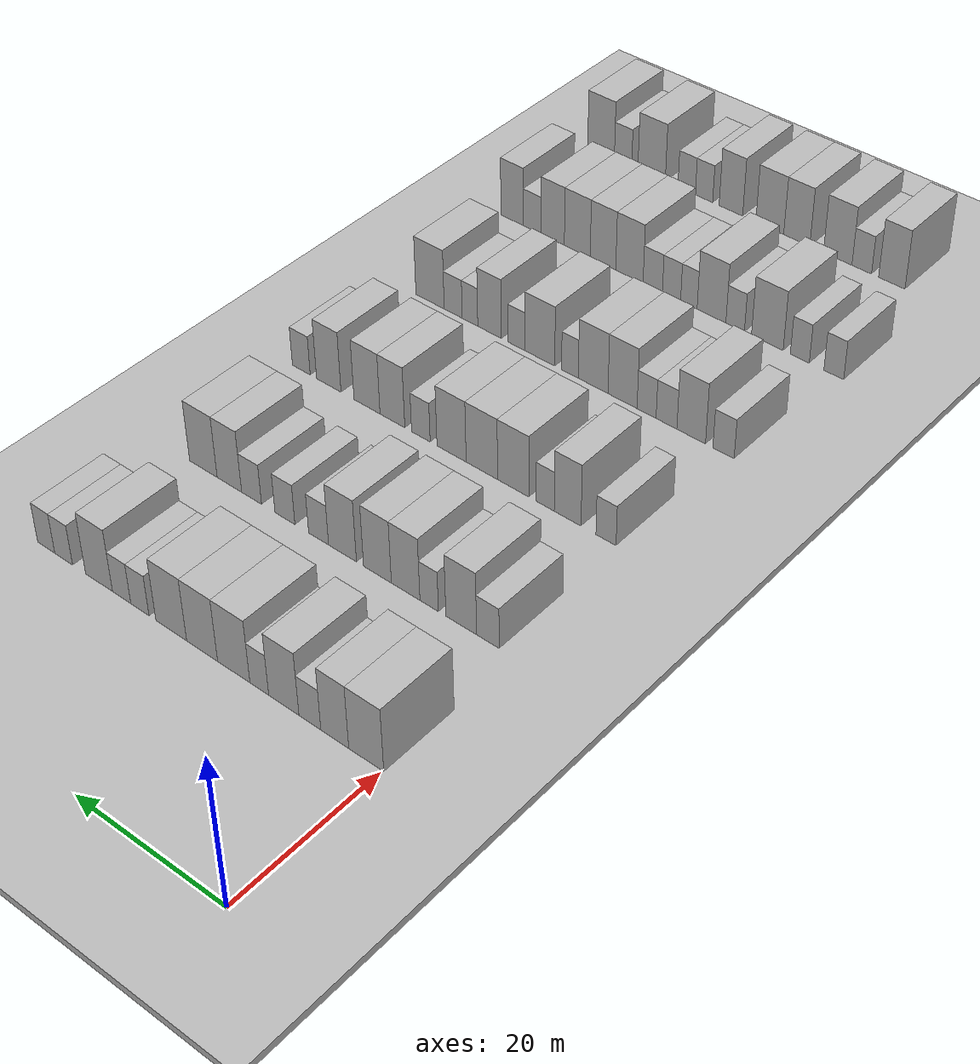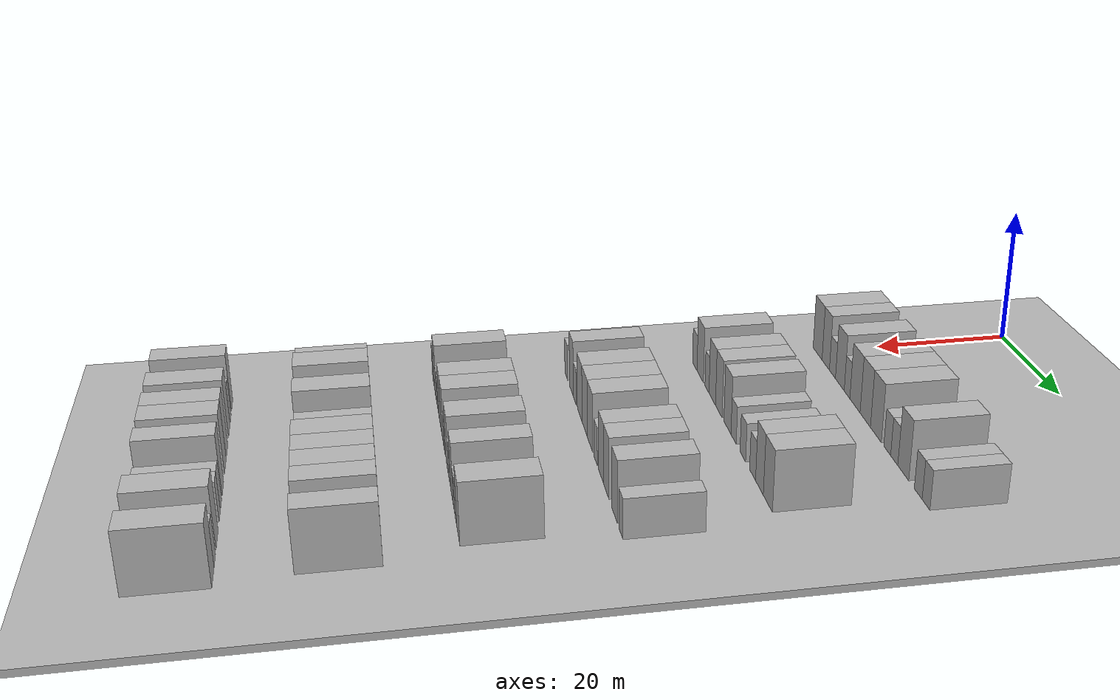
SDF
<sdf version="1.6">
 <world name="default">
  <include><name>ground_plane_1</name><uri>model://HANNAS_ground_plane</uri></include>
  <include>
   <name>ground_plane_2</name>
   <uri>model://HANNAS_ground_plane</uri>
   <pose>100 0 0  0 0 0</pose>
  </include>
  <model name="building_94">
   <static>1</static>
   <pose>25.0000 1.7902 0 0.000000 0.000000 0.000000</pose>
   <link name="link">
    <pose>0 0 4.50 0 0 0</pose>
    <collision name="collision"><geometry><box><size>10.0000 4.4809 9.0000</size></box></geometry></collision>
    <visual name="visual">
     <cast_shadows>0</cast_shadows>
     <geometry><box><size>10.0000 4.4809 9.0000</size></box></geometry>
     <material>
      <script>
       <uri>model://HANNAS_wall/materials/scripts</uri>
       <uri>model://HANNAS_wall/materials/textures</uri>
       <name>vrc/HANNAS_wall</name>
      </script>
     </material>
    </visual>
   </link>
  </model>
  <model name="building_95">
   <static>1</static>
   <pose>25.0000 5.8483 0 0.000000 0.000000 0.000000</pose>
   <link name="link">
    <pose>0 0 4.50 0 0 0</pose>
    <collision name="collision"><geometry><box><size>10.0000 3.6353 9.0000</size></box></geometry></collision>
    <visual name="visual">
     <cast_shadows>0</cast_shadows>
     <geometry><box><size>10.0000 3.6353 9.0000</size></box></geometry>
     <material>
      <script>
       <uri>model://HANNAS_wall/materials/scripts</uri>
       <uri>model://HANNAS_wall/materials/textures</uri>
       <name>vrc/HANNAS_wall</name>
      </script>
     </material>
    </visual>
   </link>
  </model>
  <model name="building_96">
   <static>1</static>
   <pose>25.0000 9.1132 0 0.000000 0.000000 0.000000</pose>
   <link name="link">
    <pose>0 0 3.00 0 0 0</pose>
    <collision name="collision"><geometry><box><size>10.0000 2.8946 6.0000</size></box></geometry></collision>
    <visual name="visual">
     <cast_shadows>0</cast_shadows>
     <geometry><box><size>10.0000 2.8946 6.0000</size></box></geometry>
     <material>
      <script>
       <uri>model://HANNAS_wall/materials/scripts</uri>
       <uri>model://HANNAS_wall/materials/textures</uri>
       <name>vrc/HANNAS_wall</name>
      </script>
     </material>
    </visual>
   </link>
  </model>
  <model name="building_97">
   <static>1</static>
   <pose>25.0000 12.5950 0 0.000000 0.000000 0.000000</pose>
   <link name="link">
    <pose>0 0 4.50 0 0 0</pose>
    <collision name="collision"><geometry><box><size>10.0000 4.0690 9.0000</size></box></geometry></collision>
    <visual name="visual">
     <cast_shadows>0</cast_shadows>
     <geometry><box><size>10.0000 4.0690 9.0000</size></box></geometry>
     <material>
      <script>
       <uri>model://HANNAS_wall/materials/scripts</uri>
       <uri>model://HANNAS_wall/materials/textures</uri>
       <name>vrc/HANNAS_wall</name>
      </script>
     </material>
    </visual>
   </link>
  </model>
  <model name="building_98">
   <static>1</static>
   <pose>25.0000 15.9130 0 0.000000 0.000000 0.000000</pose>
   <link name="link">
    <pose>0 0 3.00 0 0 0</pose>
    <collision name="collision"><geometry><box><size>10.0000 2.5670 6.0000</size></box></geometry></collision>
    <visual name="visual">
     <cast_shadows>0</cast_shadows>
     <geometry><box><size>10.0000 2.5670 6.0000</size></box></geometry>
     <material>
      <script>
       <uri>model://HANNAS_wall/materials/scripts</uri>
       <uri>model://HANNAS_wall/materials/textures</uri>
       <name>vrc/HANNAS_wall</name>
      </script>
     </material>
    </visual>
   </link>
  </model>
  <model name="building_99">
   <static>1</static>
   <pose>25.0000 19.4385 0 0.000000 0.000000 0.000000</pose>
   <link name="link">
    <pose>0 0 4.50 0 0 0</pose>
    <collision name="collision"><geometry><box><size>10.0000 4.4841 9.0000</size></box></geometry></collision>
    <visual name="visual">
     <cast_shadows>0</cast_shadows>
     <geometry><box><size>10.0000 4.4841 9.0000</size></box></geometry>
     <material>
      <script>
       <uri>model://HANNAS_wall/materials/scripts</uri>
       <uri>model://HANNAS_wall/materials/textures</uri>
       <name>vrc/HANNAS_wall</name>
      </script>
     </material>
    </visual>
   </link>
  </model>
  <model name="building_100">
   <static>1</static>
   <pose>25.0000 23.8753 0 0.000000 0.000000 0.000000</pose>
   <link name="link">
    <pose>0 0 4.50 0 0 0</pose>
    <collision name="collision"><geometry><box><size>10.0000 4.3895 9.0000</size></box></geometry></collision>
    <visual name="visual">
     <cast_shadows>0</cast_shadows>
     <geometry><box><size>10.0000 4.3895 9.0000</size></box></geometry>
     <material>
      <script>
       <uri>model://HANNAS_wall/materials/scripts</uri>
       <uri>model://HANNAS_wall/materials/textures</uri>
       <name>vrc/HANNAS_wall</name>
      </script>
     </material>
    </visual>
   </link>
  </model>
  <model name="building_101">
   <static>1</static>
   <pose>25.0000 28.2865 0 0.000000 0.000000 0.000000</pose>
   <link name="link">
    <pose>0 0 4.50 0 0 0</pose>
    <collision name="collision"><geometry><box><size>10.0000 4.4328 9.0000</size></box></geometry></collision>
    <visual name="visual">
     <cast_shadows>0</cast_shadows>
     <geometry><box><size>10.0000 4.4328 9.0000</size></box></geometry>
     <material>
      <script>
       <uri>model://HANNAS_wall/materials/scripts</uri>
       <uri>model://HANNAS_wall/materials/textures</uri>
       <name>vrc/HANNAS_wall</name>
      </script>
     </material>
    </visual>
   </link>
  </model>
  <model name="building_102">
   <static>1</static>
   <pose>25.0000 32.8436 0 0.000000 0.000000 0.000000</pose>
   <link name="link">
    <pose>0 0 3.00 0 0 0</pose>
    <collision name="collision"><geometry><box><size>10.0000 2.6814 6.0000</size></box></geometry></collision>
    <visual name="visual">
     <cast_shadows>0</cast_shadows>
     <geometry><box><size>10.0000 2.6814 6.0000</size></box></geometry>
     <material>
      <script>
       <uri>model://HANNAS_wall/materials/scripts</uri>
       <uri>model://HANNAS_wall/materials/textures</uri>
       <name>vrc/HANNAS_wall</name>
      </script>
     </material>
    </visual>
   </link>
  </model>
  <model name="building_103">
   <static>1</static>
   <pose>25.0000 35.5441 0 0.000000 0.000000 0.000000</pose>
   <link name="link">
    <pose>0 0 3.00 0 0 0</pose>
    <collision name="collision"><geometry><box><size>10.0000 2.7196 6.0000</size></box></geometry></collision>
    <visual name="visual">
     <cast_shadows>0</cast_shadows>
     <geometry><box><size>10.0000 2.7196 6.0000</size></box></geometry>
     <material>
      <script>
       <uri>model://HANNAS_wall/materials/scripts</uri>
       <uri>model://HANNAS_wall/materials/textures</uri>
       <name>vrc/HANNAS_wall</name>
      </script>
     </material>
    </visual>
   </link>
  </model>
  <model name="building_104">
   <static>1</static>
   <pose>25.0000 38.9410 0 0.000000 0.000000 0.000000</pose>
   <link name="link">
    <pose>0 0 4.50 0 0 0</pose>
    <collision name="collision"><geometry><box><size>10.0000 4.0742 9.0000</size></box></geometry></collision>
    <visual name="visual">
     <cast_shadows>0</cast_shadows>
     <geometry><box><size>10.0000 4.0742 9.0000</size></box></geometry>
     <material>
      <script>
       <uri>model://HANNAS_wall/materials/scripts</uri>
       <uri>model://HANNAS_wall/materials/textures</uri>
       <name>vrc/HANNAS_wall</name>
      </script>
     </material>
    </visual>
   </link>
  </model>
  <model name="building_105">
   <static>1</static>
   <pose>25.0000 44.3546 0 0.000000 0.000000 0.000000</pose>
   <link name="link">
    <pose>0 0 3.00 0 0 0</pose>
    <collision name="collision"><geometry><box><size>10.0000 2.7528 6.0000</size></box></geometry></collision>
    <visual name="visual">
     <cast_shadows>0</cast_shadows>
     <geometry><box><size>10.0000 2.7528 6.0000</size></box></geometry>
     <material>
      <script>
       <uri>model://HANNAS_wall/materials/scripts</uri>
       <uri>model://HANNAS_wall/materials/textures</uri>
       <name>vrc/HANNAS_wall</name>
      </script>
     </material>
    </visual>
   </link>
  </model>
  <model name="building_106">
   <static>1</static>
   <pose>25.0000 47.0709 0 0.000000 0.000000 0.000000</pose>
   <link name="link">
    <pose>0 0 3.00 0 0 0</pose>
    <collision name="collision"><geometry><box><size>10.0000 2.6799 6.0000</size></box></geometry></collision>
    <visual name="visual">
     <cast_shadows>0</cast_shadows>
     <geometry><box><size>10.0000 2.6799 6.0000</size></box></geometry>
     <material>
      <script>
       <uri>model://HANNAS_wall/materials/scripts</uri>
       <uri>model://HANNAS_wall/materials/textures</uri>
       <name>vrc/HANNAS_wall</name>
      </script>
     </material>
    </visual>
   </link>
  </model>
  <model name="building_255">
   <static>1</static>
   <pose>44.0000 2.9612 0 0.000000 0.000000 0.000000</pose>
   <link name="link">
    <pose>0 0 3.00 0 0 0</pose>
    <collision name="collision"><geometry><box><size>10.0000 2.9539 6.0000</size></box></geometry></collision>
    <visual name="visual">
     <cast_shadows>0</cast_shadows>
     <geometry><box><size>10.0000 2.9539 6.0000</size></box></geometry>
     <material>
      <script>
       <uri>model://HANNAS_wall/materials/scripts</uri>
       <uri>model://HANNAS_wall/materials/textures</uri>
       <name>vrc/HANNAS_wall</name>
      </script>
     </material>
    </visual>
   </link>
  </model>
  <model name="building_256">
   <static>1</static>
   <pose>44.0000 6.4739 0 0.000000 0.000000 0.000000</pose>
   <link name="link">
    <pose>0 0 4.50 0 0 0</pose>
    <collision name="collision"><geometry><box><size>10.0000 4.0714 9.0000</size></box></geometry></collision>
    <visual name="visual">
     <cast_shadows>0</cast_shadows>
     <geometry><box><size>10.0000 4.0714 9.0000</size></box></geometry>
     <material>
      <script>
       <uri>model://HANNAS_wall/materials/scripts</uri>
       <uri>model://HANNAS_wall/materials/textures</uri>
       <name>vrc/HANNAS_wall</name>
      </script>
     </material>
    </visual>
   </link>
  </model>
  <model name="building_257">
   <static>1</static>
   <pose>44.0000 10.7576 0 0.000000 0.000000 0.000000</pose>
   <link name="link">
    <pose>0 0 3.00 0 0 0</pose>
    <collision name="collision"><geometry><box><size>10.0000 2.4960 6.0000</size></box></geometry></collision>
    <visual name="visual">
     <cast_shadows>0</cast_shadows>
     <geometry><box><size>10.0000 2.4960 6.0000</size></box></geometry>
     <material>
      <script>
       <uri>model://HANNAS_wall/materials/scripts</uri>
       <uri>model://HANNAS_wall/materials/textures</uri>
       <name>vrc/HANNAS_wall</name>
      </script>
     </material>
    </visual>
   </link>
  </model>
  <model name="building_258">
   <static>1</static>
   <pose>44.0000 13.9608 0 0.000000 0.000000 0.000000</pose>
   <link name="link">
    <pose>0 0 4.50 0 0 0</pose>
    <collision name="collision"><geometry><box><size>10.0000 3.9104 9.0000</size></box></geometry></collision>
    <visual name="visual">
     <cast_shadows>0</cast_shadows>
     <geometry><box><size>10.0000 3.9104 9.0000</size></box></geometry>
     <material>
      <script>
       <uri>model://HANNAS_wall/materials/scripts</uri>
       <uri>model://HANNAS_wall/materials/textures</uri>
       <name>vrc/HANNAS_wall</name>
      </script>
     </material>
    </visual>
   </link>
  </model>
  <model name="building_259">
   <static>1</static>
   <pose>44.0000 17.8517 0 0.000000 0.000000 0.000000</pose>
   <link name="link">
    <pose>0 0 4.50 0 0 0</pose>
    <collision name="collision"><geometry><box><size>10.0000 3.8714 9.0000</size></box></geometry></collision>
    <visual name="visual">
     <cast_shadows>0</cast_shadows>
     <geometry><box><size>10.0000 3.8714 9.0000</size></box></geometry>
     <material>
      <script>
       <uri>model://HANNAS_wall/materials/scripts</uri>
       <uri>model://HANNAS_wall/materials/textures</uri>
       <name>vrc/HANNAS_wall</name>
      </script>
     </material>
    </visual>
   </link>
  </model>
  <model name="building_260">
   <static>1</static>
   <pose>44.0000 22.7672 0 0.000000 0.000000 0.000000</pose>
   <link name="link">
    <pose>0 0 4.50 0 0 0</pose>
    <collision name="collision"><geometry><box><size>10.0000 3.9596 9.0000</size></box></geometry></collision>
    <visual name="visual">
     <cast_shadows>0</cast_shadows>
     <geometry><box><size>10.0000 3.9596 9.0000</size></box></geometry>
     <material>
      <script>
       <uri>model://HANNAS_wall/materials/scripts</uri>
       <uri>model://HANNAS_wall/materials/textures</uri>
       <name>vrc/HANNAS_wall</name>
      </script>
     </material>
    </visual>
   </link>
  </model>
  <model name="building_261">
   <static>1</static>
   <pose>44.0000 26.1856 0 0.000000 0.000000 0.000000</pose>
   <link name="link">
    <pose>0 0 3.00 0 0 0</pose>
    <collision name="collision"><geometry><box><size>10.0000 2.8773 6.0000</size></box></geometry></collision>
    <visual name="visual">
     <cast_shadows>0</cast_shadows>
     <geometry><box><size>10.0000 2.8773 6.0000</size></box></geometry>
     <material>
      <script>
       <uri>model://HANNAS_wall/materials/scripts</uri>
       <uri>model://HANNAS_wall/materials/textures</uri>
       <name>vrc/HANNAS_wall</name>
      </script>
     </material>
    </visual>
   </link>
  </model>
  <model name="building_262">
   <static>1</static>
   <pose>44.0000 31.0920 0 0.000000 0.000000 0.000000</pose>
   <link name="link">
    <pose>0 0 3.00 0 0 0</pose>
    <collision name="collision"><geometry><box><size>10.0000 2.9354 6.0000</size></box></geometry></collision>
    <visual name="visual">
     <cast_shadows>0</cast_shadows>
     <geometry><box><size>10.0000 2.9354 6.0000</size></box></geometry>
     <material>
      <script>
       <uri>model://HANNAS_wall/materials/scripts</uri>
       <uri>model://HANNAS_wall/materials/textures</uri>
       <name>vrc/HANNAS_wall</name>
      </script>
     </material>
    </visual>
   </link>
  </model>
  <model name="building_263">
   <static>1</static>
   <pose>44.0000 36.0516 0 0.000000 0.000000 0.000000</pose>
   <link name="link">
    <pose>0 0 3.00 0 0 0</pose>
    <collision name="collision"><geometry><box><size>10.0000 2.9840 6.0000</size></box></geometry></collision>
    <visual name="visual">
     <cast_shadows>0</cast_shadows>
     <geometry><box><size>10.0000 2.9840 6.0000</size></box></geometry>
     <material>
      <script>
       <uri>model://HANNAS_wall/materials/scripts</uri>
       <uri>model://HANNAS_wall/materials/textures</uri>
       <name>vrc/HANNAS_wall</name>
      </script>
     </material>
    </visual>
   </link>
  </model>
  <model name="building_264">
   <static>1</static>
   <pose>44.0000 39.4110 0 0.000000 0.000000 0.000000</pose>
   <link name="link">
    <pose>0 0 4.50 0 0 0</pose>
    <collision name="collision"><geometry><box><size>10.0000 3.7347 9.0000</size></box></geometry></collision>
    <visual name="visual">
     <cast_shadows>0</cast_shadows>
     <geometry><box><size>10.0000 3.7347 9.0000</size></box></geometry>
     <material>
      <script>
       <uri>model://HANNAS_wall/materials/scripts</uri>
       <uri>model://HANNAS_wall/materials/textures</uri>
       <name>vrc/HANNAS_wall</name>
      </script>
     </material>
    </visual>
   </link>
  </model>
  <model name="building_265">
   <static>1</static>
   <pose>44.0000 43.4034 0 0.000000 0.000000 0.000000</pose>
   <link name="link">
    <pose>0 0 4.50 0 0 0</pose>
    <collision name="collision"><geometry><box><size>10.0000 4.2501 9.0000</size></box></geometry></collision>
    <visual name="visual">
     <cast_shadows>0</cast_shadows>
     <geometry><box><size>10.0000 4.2501 9.0000</size></box></geometry>
     <material>
      <script>
       <uri>model://HANNAS_wall/materials/scripts</uri>
       <uri>model://HANNAS_wall/materials/textures</uri>
       <name>vrc/HANNAS_wall</name>
      </script>
     </material>
    </visual>
   </link>
  </model>
  <model name="building_423">
   <static>1</static>
   <pose>63.0000 2.9923 0 0.000000 0.000000 0.000000</pose>
   <link name="link">
    <pose>0 0 3.00 0 0 0</pose>
    <collision name="collision"><geometry><box><size>10.0000 2.6619 6.0000</size></box></geometry></collision>
    <visual name="visual">
     <cast_shadows>0</cast_shadows>
     <geometry><box><size>10.0000 2.6619 6.0000</size></box></geometry>
     <material>
      <script>
       <uri>model://HANNAS_wall/materials/scripts</uri>
       <uri>model://HANNAS_wall/materials/textures</uri>
       <name>vrc/HANNAS_wall</name>
      </script>
     </material>
    </visual>
   </link>
  </model>
  <model name="building_424">
   <static>1</static>
   <pose>63.0000 8.1340 0 0.000000 0.000000 0.000000</pose>
   <link name="link">
    <pose>0 0 4.50 0 0 0</pose>
    <collision name="collision"><geometry><box><size>10.0000 3.6215 9.0000</size></box></geometry></collision>
    <visual name="visual">
     <cast_shadows>0</cast_shadows>
     <geometry><box><size>10.0000 3.6215 9.0000</size></box></geometry>
     <material>
      <script>
       <uri>model://HANNAS_wall/materials/scripts</uri>
       <uri>model://HANNAS_wall/materials/textures</uri>
       <name>vrc/HANNAS_wall</name>
      </script>
     </material>
    </visual>
   </link>
  </model>
  <model name="building_425">
   <static>1</static>
   <pose>63.0000 11.1905 0 0.000000 0.000000 0.000000</pose>
   <link name="link">
    <pose>0 0 3.00 0 0 0</pose>
    <collision name="collision"><geometry><box><size>10.0000 2.4915 6.0000</size></box></geometry></collision>
    <visual name="visual">
     <cast_shadows>0</cast_shadows>
     <geometry><box><size>10.0000 2.4915 6.0000</size></box></geometry>
     <material>
      <script>
       <uri>model://HANNAS_wall/materials/scripts</uri>
       <uri>model://HANNAS_wall/materials/textures</uri>
       <name>vrc/HANNAS_wall</name>
      </script>
     </material>
    </visual>
   </link>
  </model>
  <model name="building_426">
   <static>1</static>
   <pose>63.0000 15.6122 0 0.000000 0.000000 0.000000</pose>
   <link name="link">
    <pose>0 0 4.50 0 0 0</pose>
    <collision name="collision"><geometry><box><size>10.0000 4.3519 9.0000</size></box></geometry></collision>
    <visual name="visual">
     <cast_shadows>0</cast_shadows>
     <geometry><box><size>10.0000 4.3519 9.0000</size></box></geometry>
     <material>
      <script>
       <uri>model://HANNAS_wall/materials/scripts</uri>
       <uri>model://HANNAS_wall/materials/textures</uri>
       <name>vrc/HANNAS_wall</name>
      </script>
     </material>
    </visual>
   </link>
  </model>
  <model name="building_427">
   <static>1</static>
   <pose>63.0000 20.0292 0 0.000000 0.000000 0.000000</pose>
   <link name="link">
    <pose>0 0 4.50 0 0 0</pose>
    <collision name="collision"><geometry><box><size>10.0000 4.4821 9.0000</size></box></geometry></collision>
    <visual name="visual">
     <cast_shadows>0</cast_shadows>
     <geometry><box><size>10.0000 4.4821 9.0000</size></box></geometry>
     <material>
      <script>
       <uri>model://HANNAS_wall/materials/scripts</uri>
       <uri>model://HANNAS_wall/materials/textures</uri>
       <name>vrc/HANNAS_wall</name>
      </script>
     </material>
    </visual>
   </link>
  </model>
  <model name="building_428">
   <static>1</static>
   <pose>63.0000 24.3827 0 0.000000 0.000000 0.000000</pose>
   <link name="link">
    <pose>0 0 4.50 0 0 0</pose>
    <collision name="collision"><geometry><box><size>10.0000 4.2249 9.0000</size></box></geometry></collision>
    <visual name="visual">
     <cast_shadows>0</cast_shadows>
     <geometry><box><size>10.0000 4.2249 9.0000</size></box></geometry>
     <material>
      <script>
       <uri>model://HANNAS_wall/materials/scripts</uri>
       <uri>model://HANNAS_wall/materials/textures</uri>
       <name>vrc/HANNAS_wall</name>
      </script>
     </material>
    </visual>
   </link>
  </model>
  <model name="building_429">
   <static>1</static>
   <pose>63.0000 28.8658 0 0.000000 0.000000 0.000000</pose>
   <link name="link">
    <pose>0 0 3.00 0 0 0</pose>
    <collision name="collision"><geometry><box><size>10.0000 2.7413 6.0000</size></box></geometry></collision>
    <visual name="visual">
     <cast_shadows>0</cast_shadows>
     <geometry><box><size>10.0000 2.7413 6.0000</size></box></geometry>
     <material>
      <script>
       <uri>model://HANNAS_wall/materials/scripts</uri>
       <uri>model://HANNAS_wall/materials/textures</uri>
       <name>vrc/HANNAS_wall</name>
      </script>
     </material>
    </visual>
   </link>
  </model>
  <model name="building_430">
   <static>1</static>
   <pose>63.0000 33.0960 0 0.000000 0.000000 0.000000</pose>
   <link name="link">
    <pose>0 0 4.50 0 0 0</pose>
    <collision name="collision"><geometry><box><size>10.0000 3.7191 9.0000</size></box></geometry></collision>
    <visual name="visual">
     <cast_shadows>0</cast_shadows>
     <geometry><box><size>10.0000 3.7191 9.0000</size></box></geometry>
     <material>
      <script>
       <uri>model://HANNAS_wall/materials/scripts</uri>
       <uri>model://HANNAS_wall/materials/textures</uri>
       <name>vrc/HANNAS_wall</name>
      </script>
     </material>
    </visual>
   </link>
  </model>
  <model name="building_431">
   <static>1</static>
   <pose>63.0000 36.9377 0 0.000000 0.000000 0.000000</pose>
   <link name="link">
    <pose>0 0 4.50 0 0 0</pose>
    <collision name="collision"><geometry><box><size>10.0000 3.9642 9.0000</size></box></geometry></collision>
    <visual name="visual">
     <cast_shadows>0</cast_shadows>
     <geometry><box><size>10.0000 3.9642 9.0000</size></box></geometry>
     <material>
      <script>
       <uri>model://HANNAS_wall/materials/scripts</uri>
       <uri>model://HANNAS_wall/materials/textures</uri>
       <name>vrc/HANNAS_wall</name>
      </script>
     </material>
    </visual>
   </link>
  </model>
  <model name="building_432">
   <static>1</static>
   <pose>63.0000 42.8223 0 0.000000 0.000000 0.000000</pose>
   <link name="link">
    <pose>0 0 4.50 0 0 0</pose>
    <collision name="collision"><geometry><box><size>10.0000 3.8050 9.0000</size></box></geometry></collision>
    <visual name="visual">
     <cast_shadows>0</cast_shadows>
     <geometry><box><size>10.0000 3.8050 9.0000</size></box></geometry>
     <material>
      <script>
       <uri>model://HANNAS_wall/materials/scripts</uri>
       <uri>model://HANNAS_wall/materials/textures</uri>
       <name>vrc/HANNAS_wall</name>
      </script>
     </material>
    </visual>
   </link>
  </model>
  <model name="building_433">
   <static>1</static>
   <pose>63.0000 47.1342 0 0.000000 0.000000 0.000000</pose>
   <link name="link">
    <pose>0 0 3.00 0 0 0</pose>
    <collision name="collision"><geometry><box><size>10.0000 2.8188 6.0000</size></box></geometry></collision>
    <visual name="visual">
     <cast_shadows>0</cast_shadows>
     <geometry><box><size>10.0000 2.8188 6.0000</size></box></geometry>
     <material>
      <script>
       <uri>model://HANNAS_wall/materials/scripts</uri>
       <uri>model://HANNAS_wall/materials/textures</uri>
       <name>vrc/HANNAS_wall</name>
      </script>
     </material>
    </visual>
   </link>
  </model>
  <model name="building_597">
   <static>1</static>
   <pose>82.0000 1.6183 0 0.000000 0.000000 0.000000</pose>
   <link name="link">
    <pose>0 0 3.00 0 0 0</pose>
    <collision name="collision"><geometry><box><size>10.0000 2.8456 6.0000</size></box></geometry></collision>
    <visual name="visual">
     <cast_shadows>0</cast_shadows>
     <geometry><box><size>10.0000 2.8456 6.0000</size></box></geometry>
     <material>
      <script>
       <uri>model://HANNAS_wall/materials/scripts</uri>
       <uri>model://HANNAS_wall/materials/textures</uri>
       <name>vrc/HANNAS_wall</name>
      </script>
     </material>
    </visual>
   </link>
  </model>
  <model name="building_598">
   <static>1</static>
   <pose>82.0000 5.9975 0 0.000000 0.000000 0.000000</pose>
   <link name="link">
    <pose>0 0 4.50 0 0 0</pose>
    <collision name="collision"><geometry><box><size>10.0000 3.9129 9.0000</size></box></geometry></collision>
    <visual name="visual">
     <cast_shadows>0</cast_shadows>
     <geometry><box><size>10.0000 3.9129 9.0000</size></box></geometry>
     <material>
      <script>
       <uri>model://HANNAS_wall/materials/scripts</uri>
       <uri>model://HANNAS_wall/materials/textures</uri>
       <name>vrc/HANNAS_wall</name>
      </script>
     </material>
    </visual>
   </link>
  </model>
  <model name="building_599">
   <static>1</static>
   <pose>82.0000 9.3927 0 0.000000 0.000000 0.000000</pose>
   <link name="link">
    <pose>0 0 3.00 0 0 0</pose>
    <collision name="collision"><geometry><box><size>10.0000 2.8775 6.0000</size></box></geometry></collision>
    <visual name="visual">
     <cast_shadows>0</cast_shadows>
     <geometry><box><size>10.0000 2.8775 6.0000</size></box></geometry>
     <material>
      <script>
       <uri>model://HANNAS_wall/materials/scripts</uri>
       <uri>model://HANNAS_wall/materials/textures</uri>
       <name>vrc/HANNAS_wall</name>
      </script>
     </material>
    </visual>
   </link>
  </model>
  <model name="building_600">
   <static>1</static>
   <pose>82.0000 12.1638 0 0.000000 0.000000 0.000000</pose>
   <link name="link">
    <pose>0 0 3.00 0 0 0</pose>
    <collision name="collision"><geometry><box><size>10.0000 2.6648 6.0000</size></box></geometry></collision>
    <visual name="visual">
     <cast_shadows>0</cast_shadows>
     <geometry><box><size>10.0000 2.6648 6.0000</size></box></geometry>
     <material>
      <script>
       <uri>model://HANNAS_wall/materials/scripts</uri>
       <uri>model://HANNAS_wall/materials/textures</uri>
       <name>vrc/HANNAS_wall</name>
      </script>
     </material>
    </visual>
   </link>
  </model>
  <model name="building_601">
   <static>1</static>
   <pose>82.0000 15.5599 0 0.000000 0.000000 0.000000</pose>
   <link name="link">
    <pose>0 0 4.50 0 0 0</pose>
    <collision name="collision"><geometry><box><size>10.0000 4.1272 9.0000</size></box></geometry></collision>
    <visual name="visual">
     <cast_shadows>0</cast_shadows>
     <geometry><box><size>10.0000 4.1272 9.0000</size></box></geometry>
     <material>
      <script>
       <uri>model://HANNAS_wall/materials/scripts</uri>
       <uri>model://HANNAS_wall/materials/textures</uri>
       <name>vrc/HANNAS_wall</name>
      </script>
     </material>
    </visual>
   </link>
  </model>
  <model name="building_602">
   <static>1</static>
   <pose>82.0000 19.7607 0 0.000000 0.000000 0.000000</pose>
   <link name="link">
    <pose>0 0 4.50 0 0 0</pose>
    <collision name="collision"><geometry><box><size>10.0000 4.2745 9.0000</size></box></geometry></collision>
    <visual name="visual">
     <cast_shadows>0</cast_shadows>
     <geometry><box><size>10.0000 4.2745 9.0000</size></box></geometry>
     <material>
      <script>
       <uri>model://HANNAS_wall/materials/scripts</uri>
       <uri>model://HANNAS_wall/materials/textures</uri>
       <name>vrc/HANNAS_wall</name>
      </script>
     </material>
    </visual>
   </link>
  </model>
  <model name="building_603">
   <static>1</static>
   <pose>82.0000 23.1157 0 0.000000 0.000000 0.000000</pose>
   <link name="link">
    <pose>0 0 3.00 0 0 0</pose>
    <collision name="collision"><geometry><box><size>10.0000 2.4354 6.0000</size></box></geometry></collision>
    <visual name="visual">
     <cast_shadows>0</cast_shadows>
     <geometry><box><size>10.0000 2.4354 6.0000</size></box></geometry>
     <material>
      <script>
       <uri>model://HANNAS_wall/materials/scripts</uri>
       <uri>model://HANNAS_wall/materials/textures</uri>
       <name>vrc/HANNAS_wall</name>
      </script>
     </material>
    </visual>
   </link>
  </model>
  <model name="building_604">
   <static>1</static>
   <pose>82.0000 27.5356 0 0.000000 0.000000 0.000000</pose>
   <link name="link">
    <pose>0 0 4.50 0 0 0</pose>
    <collision name="collision"><geometry><box><size>10.0000 4.4045 9.0000</size></box></geometry></collision>
    <visual name="visual">
     <cast_shadows>0</cast_shadows>
     <geometry><box><size>10.0000 4.4045 9.0000</size></box></geometry>
     <material>
      <script>
       <uri>model://HANNAS_wall/materials/scripts</uri>
       <uri>model://HANNAS_wall/materials/textures</uri>
       <name>vrc/HANNAS_wall</name>
      </script>
     </material>
    </visual>
   </link>
  </model>
  <model name="building_605">
   <static>1</static>
   <pose>82.0000 31.0239 0 0.000000 0.000000 0.000000</pose>
   <link name="link">
    <pose>0 0 3.00 0 0 0</pose>
    <collision name="collision"><geometry><box><size>10.0000 2.5721 6.0000</size></box></geometry></collision>
    <visual name="visual">
     <cast_shadows>0</cast_shadows>
     <geometry><box><size>10.0000 2.5721 6.0000</size></box></geometry>
     <material>
      <script>
       <uri>model://HANNAS_wall/materials/scripts</uri>
       <uri>model://HANNAS_wall/materials/textures</uri>
       <name>vrc/HANNAS_wall</name>
      </script>
     </material>
    </visual>
   </link>
  </model>
  <model name="building_606">
   <static>1</static>
   <pose>82.0000 35.1210 0 0.000000 0.000000 0.000000</pose>
   <link name="link">
    <pose>0 0 4.50 0 0 0</pose>
    <collision name="collision"><geometry><box><size>10.0000 3.6222 9.0000</size></box></geometry></collision>
    <visual name="visual">
     <cast_shadows>0</cast_shadows>
     <geometry><box><size>10.0000 3.6222 9.0000</size></box></geometry>
     <material>
      <script>
       <uri>model://HANNAS_wall/materials/scripts</uri>
       <uri>model://HANNAS_wall/materials/textures</uri>
       <name>vrc/HANNAS_wall</name>
      </script>
     </material>
    </visual>
   </link>
  </model>
  <model name="building_607">
   <static>1</static>
   <pose>82.0000 38.1358 0 0.000000 0.000000 0.000000</pose>
   <link name="link">
    <pose>0 0 3.00 0 0 0</pose>
    <collision name="collision"><geometry><box><size>10.0000 2.4075 6.0000</size></box></geometry></collision>
    <visual name="visual">
     <cast_shadows>0</cast_shadows>
     <geometry><box><size>10.0000 2.4075 6.0000</size></box></geometry>
     <material>
      <script>
       <uri>model://HANNAS_wall/materials/scripts</uri>
       <uri>model://HANNAS_wall/materials/textures</uri>
       <name>vrc/HANNAS_wall</name>
      </script>
     </material>
    </visual>
   </link>
  </model>
  <model name="building_608">
   <static>1</static>
   <pose>82.0000 40.7435 0 0.000000 0.000000 0.000000</pose>
   <link name="link">
    <pose>0 0 3.00 0 0 0</pose>
    <collision name="collision"><geometry><box><size>10.0000 2.8078 6.0000</size></box></geometry></collision>
    <visual name="visual">
     <cast_shadows>0</cast_shadows>
     <geometry><box><size>10.0000 2.8078 6.0000</size></box></geometry>
     <material>
      <script>
       <uri>model://HANNAS_wall/materials/scripts</uri>
       <uri>model://HANNAS_wall/materials/textures</uri>
       <name>vrc/HANNAS_wall</name>
      </script>
     </material>
    </visual>
   </link>
  </model>
  <model name="building_609">
   <static>1</static>
   <pose>82.0000 44.3857 0 0.000000 0.000000 0.000000</pose>
   <link name="link">
    <pose>0 0 4.50 0 0 0</pose>
    <collision name="collision"><geometry><box><size>10.0000 4.4766 9.0000</size></box></geometry></collision>
    <visual name="visual">
     <cast_shadows>0</cast_shadows>
     <geometry><box><size>10.0000 4.4766 9.0000</size></box></geometry>
     <material>
      <script>
       <uri>model://HANNAS_wall/materials/scripts</uri>
       <uri>model://HANNAS_wall/materials/textures</uri>
       <name>vrc/HANNAS_wall</name>
      </script>
     </material>
    </visual>
   </link>
  </model>
  <model name="building_761">
   <static>1</static>
   <pose>101.0000 -0.1022 0 0.000000 0.000000 0.000000</pose>
   <link name="link">
    <pose>0 0 3.00 0 0 0</pose>
    <collision name="collision"><geometry><box><size>10.0000 2.6871 6.0000</size></box></geometry></collision>
    <visual name="visual">
     <cast_shadows>0</cast_shadows>
     <geometry><box><size>10.0000 2.6871 6.0000</size></box></geometry>
     <material>
      <script>
       <uri>model://HANNAS_wall/materials/scripts</uri>
       <uri>model://HANNAS_wall/materials/textures</uri>
       <name>vrc/HANNAS_wall</name>
      </script>
     </material>
    </visual>
   </link>
  </model>
  <model name="building_762">
   <static>1</static>
   <pose>101.0000 4.5532 0 0.000000 0.000000 0.000000</pose>
   <link name="link">
    <pose>0 0 3.00 0 0 0</pose>
    <collision name="collision"><geometry><box><size>10.0000 2.6237 6.0000</size></box></geometry></collision>
    <visual name="visual">
     <cast_shadows>0</cast_shadows>
     <geometry><box><size>10.0000 2.6237 6.0000</size></box></geometry>
     <material>
      <script>
       <uri>model://HANNAS_wall/materials/scripts</uri>
       <uri>model://HANNAS_wall/materials/textures</uri>
       <name>vrc/HANNAS_wall</name>
      </script>
     </material>
    </visual>
   </link>
  </model>
  <model name="building_763">
   <static>1</static>
   <pose>101.0000 9.0945 0 0.000000 0.000000 0.000000</pose>
   <link name="link">
    <pose>0 0 4.50 0 0 0</pose>
    <collision name="collision"><geometry><box><size>10.0000 4.4589 9.0000</size></box></geometry></collision>
    <visual name="visual">
     <cast_shadows>0</cast_shadows>
     <geometry><box><size>10.0000 4.4589 9.0000</size></box></geometry>
     <material>
      <script>
       <uri>model://HANNAS_wall/materials/scripts</uri>
       <uri>model://HANNAS_wall/materials/textures</uri>
       <name>vrc/HANNAS_wall</name>
      </script>
     </material>
    </visual>
   </link>
  </model>
  <model name="building_764">
   <static>1</static>
   <pose>101.0000 13.6531 0 0.000000 0.000000 0.000000</pose>
   <link name="link">
    <pose>0 0 3.00 0 0 0</pose>
    <collision name="collision"><geometry><box><size>10.0000 2.6583 6.0000</size></box></geometry></collision>
    <visual name="visual">
     <cast_shadows>0</cast_shadows>
     <geometry><box><size>10.0000 2.6583 6.0000</size></box></geometry>
     <material>
      <script>
       <uri>model://HANNAS_wall/materials/scripts</uri>
       <uri>model://HANNAS_wall/materials/textures</uri>
       <name>vrc/HANNAS_wall</name>
      </script>
     </material>
    </visual>
   </link>
  </model>
  <model name="building_765">
   <static>1</static>
   <pose>101.0000 17.0689 0 0.000000 0.000000 0.000000</pose>
   <link name="link">
    <pose>0 0 4.50 0 0 0</pose>
    <collision name="collision"><geometry><box><size>10.0000 4.1734 9.0000</size></box></geometry></collision>
    <visual name="visual">
     <cast_shadows>0</cast_shadows>
     <geometry><box><size>10.0000 4.1734 9.0000</size></box></geometry>
     <material>
      <script>
       <uri>model://HANNAS_wall/materials/scripts</uri>
       <uri>model://HANNAS_wall/materials/textures</uri>
       <name>vrc/HANNAS_wall</name>
      </script>
     </material>
    </visual>
   </link>
  </model>
  <model name="building_766">
   <static>1</static>
   <pose>101.0000 20.3682 0 0.000000 0.000000 0.000000</pose>
   <link name="link">
    <pose>0 0 3.00 0 0 0</pose>
    <collision name="collision"><geometry><box><size>10.0000 2.4251 6.0000</size></box></geometry></collision>
    <visual name="visual">
     <cast_shadows>0</cast_shadows>
     <geometry><box><size>10.0000 2.4251 6.0000</size></box></geometry>
     <material>
      <script>
       <uri>model://HANNAS_wall/materials/scripts</uri>
       <uri>model://HANNAS_wall/materials/textures</uri>
       <name>vrc/HANNAS_wall</name>
      </script>
     </material>
    </visual>
   </link>
  </model>
  <model name="building_767">
   <static>1</static>
   <pose>101.0000 22.9302 0 0.000000 0.000000 0.000000</pose>
   <link name="link">
    <pose>0 0 3.00 0 0 0</pose>
    <collision name="collision"><geometry><box><size>10.0000 2.6990 6.0000</size></box></geometry></collision>
    <visual name="visual">
     <cast_shadows>0</cast_shadows>
     <geometry><box><size>10.0000 2.6990 6.0000</size></box></geometry>
     <material>
      <script>
       <uri>model://HANNAS_wall/materials/scripts</uri>
       <uri>model://HANNAS_wall/materials/textures</uri>
       <name>vrc/HANNAS_wall</name>
      </script>
     </material>
    </visual>
   </link>
  </model>
  <model name="building_768">
   <static>1</static>
   <pose>101.0000 25.7258 0 0.000000 0.000000 0.000000</pose>
   <link name="link">
    <pose>0 0 3.00 0 0 0</pose>
    <collision name="collision"><geometry><box><size>10.0000 2.8923 6.0000</size></box></geometry></collision>
    <visual name="visual">
     <cast_shadows>0</cast_shadows>
     <geometry><box><size>10.0000 2.8923 6.0000</size></box></geometry>
     <material>
      <script>
       <uri>model://HANNAS_wall/materials/scripts</uri>
       <uri>model://HANNAS_wall/materials/textures</uri>
       <name>vrc/HANNAS_wall</name>
      </script>
     </material>
    </visual>
   </link>
  </model>
  <model name="building_769">
   <static>1</static>
   <pose>101.0000 29.2462 0 0.000000 0.000000 0.000000</pose>
   <link name="link">
    <pose>0 0 4.50 0 0 0</pose>
    <collision name="collision"><geometry><box><size>10.0000 4.1484 9.0000</size></box></geometry></collision>
    <visual name="visual">
     <cast_shadows>0</cast_shadows>
     <geometry><box><size>10.0000 4.1484 9.0000</size></box></geometry>
     <material>
      <script>
       <uri>model://HANNAS_wall/materials/scripts</uri>
       <uri>model://HANNAS_wall/materials/textures</uri>
       <name>vrc/HANNAS_wall</name>
      </script>
     </material>
    </visual>
   </link>
  </model>
  <model name="building_770">
   <static>1</static>
   <pose>101.0000 33.2872 0 0.000000 0.000000 0.000000</pose>
   <link name="link">
    <pose>0 0 4.50 0 0 0</pose>
    <collision name="collision"><geometry><box><size>10.0000 3.9336 9.0000</size></box></geometry></collision>
    <visual name="visual">
     <cast_shadows>0</cast_shadows>
     <geometry><box><size>10.0000 3.9336 9.0000</size></box></geometry>
     <material>
      <script>
       <uri>model://HANNAS_wall/materials/scripts</uri>
       <uri>model://HANNAS_wall/materials/textures</uri>
       <name>vrc/HANNAS_wall</name>
      </script>
     </material>
    </visual>
   </link>
  </model>
  <model name="building_771">
   <static>1</static>
   <pose>101.0000 37.2711 0 0.000000 0.000000 0.000000</pose>
   <link name="link">
    <pose>0 0 4.50 0 0 0</pose>
    <collision name="collision"><geometry><box><size>10.0000 4.0342 9.0000</size></box></geometry></collision>
    <visual name="visual">
     <cast_shadows>0</cast_shadows>
     <geometry><box><size>10.0000 4.0342 9.0000</size></box></geometry>
     <material>
      <script>
       <uri>model://HANNAS_wall/materials/scripts</uri>
       <uri>model://HANNAS_wall/materials/textures</uri>
       <name>vrc/HANNAS_wall</name>
      </script>
     </material>
    </visual>
   </link>
  </model>
  <model name="building_772">
   <static>1</static>
   <pose>101.0000 41.1271 0 0.000000 0.000000 0.000000</pose>
   <link name="link">
    <pose>0 0 4.50 0 0 0</pose>
    <collision name="collision"><geometry><box><size>10.0000 3.6777 9.0000</size></box></geometry></collision>
    <visual name="visual">
     <cast_shadows>0</cast_shadows>
     <geometry><box><size>10.0000 3.6777 9.0000</size></box></geometry>
     <material>
      <script>
       <uri>model://HANNAS_wall/materials/scripts</uri>
       <uri>model://HANNAS_wall/materials/textures</uri>
       <name>vrc/HANNAS_wall</name>
      </script>
     </material>
    </visual>
   </link>
  </model>
  <model name="building_773">
   <static>1</static>
   <pose>101.0000 44.3854 0 0.000000 0.000000 0.000000</pose>
   <link name="link">
    <pose>0 0 3.00 0 0 0</pose>
    <collision name="collision"><geometry><box><size>10.0000 2.8388 6.0000</size></box></geometry></collision>
    <visual name="visual">
     <cast_shadows>0</cast_shadows>
     <geometry><box><size>10.0000 2.8388 6.0000</size></box></geometry>
     <material>
      <script>
       <uri>model://HANNAS_wall/materials/scripts</uri>
       <uri>model://HANNAS_wall/materials/textures</uri>
       <name>vrc/HANNAS_wall</name>
      </script>
     </material>
    </visual>
   </link>
  </model>
  <model name="building_774">
   <static>1</static>
   <pose>101.0000 47.6233 0 0.000000 0.000000 0.000000</pose>
   <link name="link">
    <pose>0 0 4.50 0 0 0</pose>
    <collision name="collision"><geometry><box><size>10.0000 3.6370 9.0000</size></box></geometry></collision>
    <visual name="visual">
     <cast_shadows>0</cast_shadows>
     <geometry><box><size>10.0000 3.6370 9.0000</size></box></geometry>
     <material>
      <script>
       <uri>model://HANNAS_wall/materials/scripts</uri>
       <uri>model://HANNAS_wall/materials/textures</uri>
       <name>vrc/HANNAS_wall</name>
      </script>
     </material>
    </visual>
   </link>
  </model>
  <model name="building_941">
   <static>1</static>
   <pose>120.0000 4.2461 0 0.000000 0.000000 0.000000</pose>
   <link name="link">
    <pose>0 0 4.50 0 0 0</pose>
    <collision name="collision"><geometry><box><size>10.0000 3.7253 9.0000</size></box></geometry></collision>
    <visual name="visual">
     <cast_shadows>0</cast_shadows>
     <geometry><box><size>10.0000 3.7253 9.0000</size></box></geometry>
     <material>
      <script>
       <uri>model://HANNAS_wall/materials/scripts</uri>
       <uri>model://HANNAS_wall/materials/textures</uri>
       <name>vrc/HANNAS_wall</name>
      </script>
     </material>
    </visual>
   </link>
  </model>
  <model name="building_942">
   <static>1</static>
   <pose>120.0000 8.5082 0 0.000000 0.000000 0.000000</pose>
   <link name="link">
    <pose>0 0 3.00 0 0 0</pose>
    <collision name="collision"><geometry><box><size>10.0000 2.7989 6.0000</size></box></geometry></collision>
    <visual name="visual">
     <cast_shadows>0</cast_shadows>
     <geometry><box><size>10.0000 2.7989 6.0000</size></box></geometry>
     <material>
      <script>
       <uri>model://HANNAS_wall/materials/scripts</uri>
       <uri>model://HANNAS_wall/materials/textures</uri>
       <name>vrc/HANNAS_wall</name>
      </script>
     </material>
    </visual>
   </link>
  </model>
  <model name="building_943">
   <static>1</static>
   <pose>120.0000 11.9750 0 0.000000 0.000000 0.000000</pose>
   <link name="link">
    <pose>0 0 4.50 0 0 0</pose>
    <collision name="collision"><geometry><box><size>10.0000 4.1346 9.0000</size></box></geometry></collision>
    <visual name="visual">
     <cast_shadows>0</cast_shadows>
     <geometry><box><size>10.0000 4.1346 9.0000</size></box></geometry>
     <material>
      <script>
       <uri>model://HANNAS_wall/materials/scripts</uri>
       <uri>model://HANNAS_wall/materials/textures</uri>
       <name>vrc/HANNAS_wall</name>
      </script>
     </material>
    </visual>
   </link>
  </model>
  <model name="building_944">
   <static>1</static>
   <pose>120.0000 17.9740 0 0.000000 0.000000 0.000000</pose>
   <link name="link">
    <pose>0 0 4.50 0 0 0</pose>
    <collision name="collision"><geometry><box><size>10.0000 3.8633 9.0000</size></box></geometry></collision>
    <visual name="visual">
     <cast_shadows>0</cast_shadows>
     <geometry><box><size>10.0000 3.8633 9.0000</size></box></geometry>
     <material>
      <script>
       <uri>model://HANNAS_wall/materials/scripts</uri>
       <uri>model://HANNAS_wall/materials/textures</uri>
       <name>vrc/HANNAS_wall</name>
      </script>
     </material>
    </visual>
   </link>
  </model>
  <model name="building_945">
   <static>1</static>
   <pose>120.0000 21.9995 0 0.000000 0.000000 0.000000</pose>
   <link name="link">
    <pose>0 0 4.50 0 0 0</pose>
    <collision name="collision"><geometry><box><size>10.0000 4.1877 9.0000</size></box></geometry></collision>
    <visual name="visual">
     <cast_shadows>0</cast_shadows>
     <geometry><box><size>10.0000 4.1877 9.0000</size></box></geometry>
     <material>
      <script>
       <uri>model://HANNAS_wall/materials/scripts</uri>
       <uri>model://HANNAS_wall/materials/textures</uri>
       <name>vrc/HANNAS_wall</name>
      </script>
     </material>
    </visual>
   </link>
  </model>
  <model name="building_946">
   <static>1</static>
   <pose>120.0000 27.8984 0 0.000000 0.000000 0.000000</pose>
   <link name="link">
    <pose>0 0 4.50 0 0 0</pose>
    <collision name="collision"><geometry><box><size>10.0000 3.6100 9.0000</size></box></geometry></collision>
    <visual name="visual">
     <cast_shadows>0</cast_shadows>
     <geometry><box><size>10.0000 3.6100 9.0000</size></box></geometry>
     <material>
      <script>
       <uri>model://HANNAS_wall/materials/scripts</uri>
       <uri>model://HANNAS_wall/materials/textures</uri>
       <name>vrc/HANNAS_wall</name>
      </script>
     </material>
    </visual>
   </link>
  </model>
  <model name="building_947">
   <static>1</static>
   <pose>120.0000 32.0547 0 0.000000 0.000000 0.000000</pose>
   <link name="link">
    <pose>0 0 3.00 0 0 0</pose>
    <collision name="collision"><geometry><box><size>10.0000 2.7026 6.0000</size></box></geometry></collision>
    <visual name="visual">
     <cast_shadows>0</cast_shadows>
     <geometry><box><size>10.0000 2.7026 6.0000</size></box></geometry>
     <material>
      <script>
       <uri>model://HANNAS_wall/materials/scripts</uri>
       <uri>model://HANNAS_wall/materials/textures</uri>
       <name>vrc/HANNAS_wall</name>
      </script>
     </material>
    </visual>
   </link>
  </model>
  <model name="building_948">
   <static>1</static>
   <pose>120.0000 34.7721 0 0.000000 0.000000 0.000000</pose>
   <link name="link">
    <pose>0 0 3.00 0 0 0</pose>
    <collision name="collision"><geometry><box><size>10.0000 2.7323 6.0000</size></box></geometry></collision>
    <visual name="visual">
     <cast_shadows>0</cast_shadows>
     <geometry><box><size>10.0000 2.7323 6.0000</size></box></geometry>
     <material>
      <script>
       <uri>model://HANNAS_wall/materials/scripts</uri>
       <uri>model://HANNAS_wall/materials/textures</uri>
       <name>vrc/HANNAS_wall</name>
      </script>
     </material>
    </visual>
   </link>
  </model>
  <model name="building_949">
   <static>1</static>
   <pose>120.0000 40.3297 0 0.000000 0.000000 0.000000</pose>
   <link name="link">
    <pose>0 0 4.50 0 0 0</pose>
    <collision name="collision"><geometry><box><size>10.0000 4.3829 9.0000</size></box></geometry></collision>
    <visual name="visual">
     <cast_shadows>0</cast_shadows>
     <geometry><box><size>10.0000 4.3829 9.0000</size></box></geometry>
     <material>
      <script>
       <uri>model://HANNAS_wall/materials/scripts</uri>
       <uri>model://HANNAS_wall/materials/textures</uri>
       <name>vrc/HANNAS_wall</name>
      </script>
     </material>
    </visual>
   </link>
  </model>
  <model name="building_950">
   <static>1</static>
   <pose>120.0000 44.9339 0 0.000000 0.000000 0.000000</pose>
   <link name="link">
    <pose>0 0 3.00 0 0 0</pose>
    <collision name="collision"><geometry><box><size>10.0000 2.8254 6.0000</size></box></geometry></collision>
    <visual name="visual">
     <cast_shadows>0</cast_shadows>
     <geometry><box><size>10.0000 2.8254 6.0000</size></box></geometry>
     <material>
      <script>
       <uri>model://HANNAS_wall/materials/scripts</uri>
       <uri>model://HANNAS_wall/materials/textures</uri>
       <name>vrc/HANNAS_wall</name>
      </script>
     </material>
    </visual>
   </link>
  </model>
  <model name="building_951">
   <static>1</static>
   <pose>120.0000 48.5378 0 0.000000 0.000000 0.000000</pose>
   <link name="link">
    <pose>0 0 4.50 0 0 0</pose>
    <collision name="collision"><geometry><box><size>10.0000 4.3824 9.0000</size></box></geometry></collision>
    <visual name="visual">
     <cast_shadows>0</cast_shadows>
     <geometry><box><size>10.0000 4.3824 9.0000</size></box></geometry>
     <material>
      <script>
       <uri>model://HANNAS_wall/materials/scripts</uri>
       <uri>model://HANNAS_wall/materials/textures</uri>
       <name>vrc/HANNAS_wall</name>
      </script>
     </material>
    </visual>
   </link>
  </model>
 </world>
</sdf>
